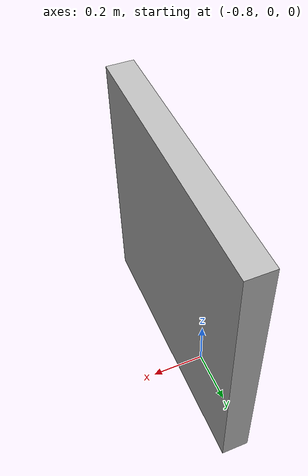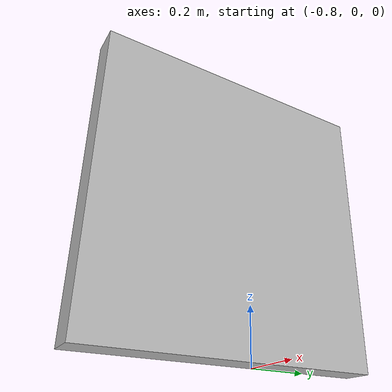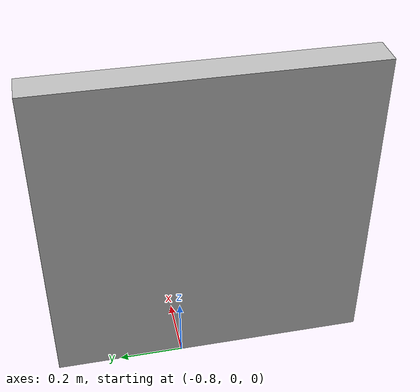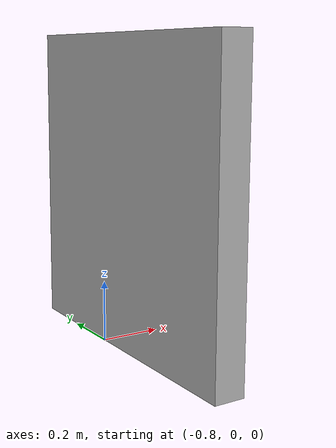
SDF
<?xml version="1.0" ?>
<sdf version="1.5">
  <model name="wall">

    <pose>-0.75 -0.1 0.5 0 0 0</pose>

<joint name="joint_wall" type="fixed">
      <child>wall</child>
      <parent>world</parent>
      <axis>
        <use_parent_model_frame>true</use_parent_model_frame>
      </axis>
    </joint>

<link name="wall">
      <pose>0.000000 0.000000 0.000000 0.000000 -0.000000 0.000000</pose>
      <inertial>
        <pose>0.000000 0.000000 0.000000 0.000000 -0.000000 0.000000</pose>
        <mass>100000</mass>
        <inertia>
          <ixx>0.010000</ixx>
          <ixy>0.000000</ixy>
          <ixz>0.000000</ixz>
          <iyy>0.010000</iyy>
          <iyz>0.000000</iyz>
          <izz>0.010000</izz>
        </inertia>
      </inertial>
      <collision name="wall_collision">
        <pose>0.000000 0.000000 0.000000 0.000000 0.000000 0.000000</pose>
        <geometry>
	  <box>
	    <size> 0.1 1 1 </size>
	  </box>
        </geometry>
      </collision>
      <visual name="wall_vis">
        <pose>0.000000 0.000000 0.000000 0.000000 0.000000 0.000000</pose>
        <geometry>
          <box>
	    <size> 0.1 1 1 </size>
	  </box>
        </geometry>
      </visual>
      <velocity_decay />
    </link>

  </model>
</sdf>
